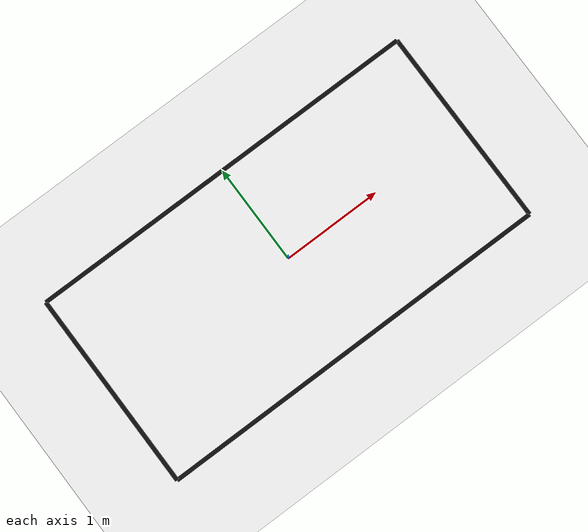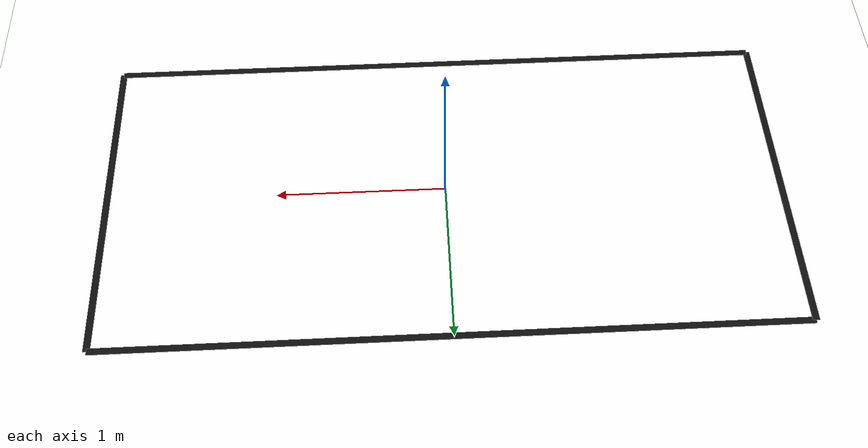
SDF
<?xml version="1.0"?>
<sdf version="1.10">
  <world name="line">

    <physics name="default_physics" default="0" type="ode">
      <max_step_size>0.001</max_step_size>
      <real_time_factor>1.0</real_time_factor>
    </physics>

    <plugin filename="gz-sim-physics-system"
            name="gz::sim::systems::Physics"/>
    <plugin filename="gz-sim-user-commands-system"
            name="gz::sim::systems::UserCommands"/>
    <plugin filename="gz-sim-scene-broadcaster-system"
            name="gz::sim::systems::SceneBroadcaster"/>
    <plugin filename="gz-sim-sensors-system"
            name="gz::sim::systems::Sensors">
      <render_engine>ogre2</render_engine>
    </plugin>
    <plugin filename="gz-sim-imu-system"
            name="gz::sim::systems::Imu"/>

    <scene>
      <ambient>0.6 0.6 0.6 1</ambient>
      <background>0.9 0.9 0.95 1</background>
    </scene>

    <light type="directional" name="sun">
      <cast_shadows>true</cast_shadows>
      <pose>0 0 10 0 0 0</pose>
      <diffuse>0.9 0.9 0.9 1</diffuse>
      <specular>0.2 0.2 0.2 1</specular>
      <direction>-0.3 0.3 -1</direction>
    </light>

    <!-- White floor (high contrast with the black line). -->
    <model name="ground_plane">
      <static>true</static>
      <link name="link">
        <collision name="collision">
          <geometry><plane><normal>0 0 1</normal><size>10 10</size></plane></geometry>
        </collision>
        <visual name="visual">
          <geometry><plane><normal>0 0 1</normal><size>10 10</size></plane></geometry>
          <material>
            <ambient>0.95 0.95 0.95 1</ambient>
            <diffuse>0.95 0.95 0.95 1</diffuse>
          </material>
        </visual>
      </link>
    </model>

    <!--  Track segments — black painted "line"                  -->
    <!--  Geometry: oval, 4.0 m long × 2.0 m wide center-to-      -->
    <!--  center, line width 0.04 m. Each segment is a thin       -->
    <!--  static box just above the floor (z = 0.001).            -->

    <!-- bottom straight (length 4 m, centered on y = -1.0) -->
    <model name="line_bottom">
      <static>true</static>
      <pose>0 -1.0 0.001 0 0 0</pose>
      <link name="link">
        <visual name="visual">
          <geometry><box><size>4.0 0.04 0.002</size></box></geometry>
          <material>
            <ambient>0.05 0.05 0.05 1</ambient>
            <diffuse>0.05 0.05 0.05 1</diffuse>
          </material>
        </visual>
      </link>
    </model>

    <!-- top straight (length 4 m, centered on y = +1.0) -->
    <model name="line_top">
      <static>true</static>
      <pose>0 1.0 0.001 0 0 0</pose>
      <link name="link">
        <visual name="visual">
          <geometry><box><size>4.0 0.04 0.002</size></box></geometry>
          <material>
            <ambient>0.05 0.05 0.05 1</ambient>
            <diffuse>0.05 0.05 0.05 1</diffuse>
          </material>
        </visual>
      </link>
    </model>

    <!-- left "curve" approximated by a straight short bar (placeholder).
         Replace with the tracks.drawio geometry in a follow-up commit. -->
    <model name="line_left">
      <static>true</static>
      <pose>-2.0 0 0.001 0 0 1.5708</pose>
      <link name="link">
        <visual name="visual">
          <geometry><box><size>2.0 0.04 0.002</size></box></geometry>
          <material>
            <ambient>0.05 0.05 0.05 1</ambient>
            <diffuse>0.05 0.05 0.05 1</diffuse>
          </material>
        </visual>
      </link>
    </model>

    <model name="line_right">
      <static>true</static>
      <pose>2.0 0 0.001 0 0 1.5708</pose>
      <link name="link">
        <visual name="visual">
          <geometry><box><size>2.0 0.04 0.002</size></box></geometry>
          <material>
            <ambient>0.05 0.05 0.05 1</ambient>
            <diffuse>0.05 0.05 0.05 1</diffuse>
          </material>
        </visual>
      </link>
    </model>

  </world>
</sdf>
